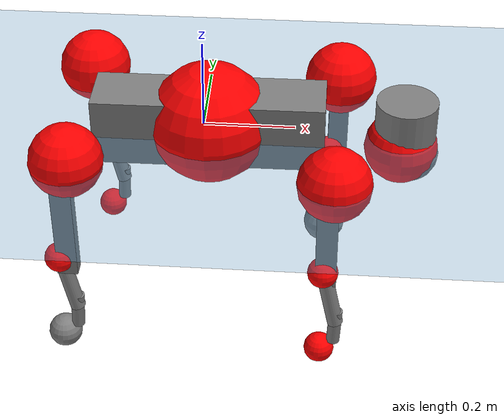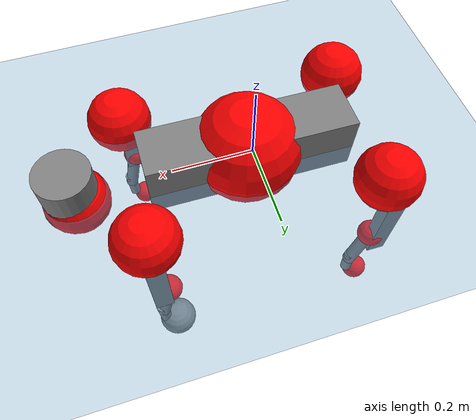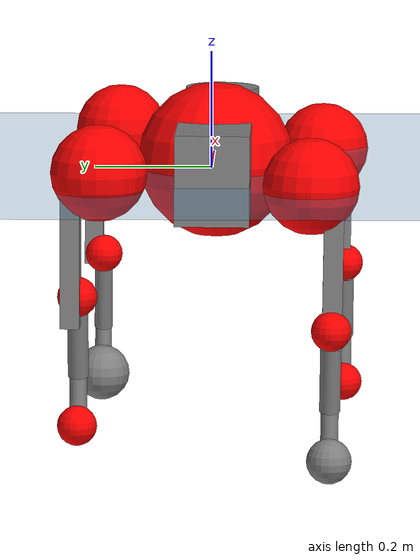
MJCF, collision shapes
<mujoco model="go2">
  <compiler angle="radian" assetdir="assets" balanceinertia="true" inertiafromgeom="false"/>

  <option timestep="0.005" density="1.2" viscosity="2e-05"/>

  <size nkey="1"/>

  <visual>
    <quality shadowsize="8192"/>
    <map shadowclip="0.5"/>
  </visual>

  <default>
    <default class="/">
      <geom contype="0" conaffinity="0" group="1" solref="-1000 -80"/>
      <site size="0.01 0.005 0.005" group="5"/>
      <general forcelimited="true" biastype="affine" gainprm="20" biasprm="0 -20 -0.5"/>
      <default class="go2">
        <joint armature="0.01" damping="0.01" frictionloss="0.2"/>
        <geom condim="1" margin="0.001"/>
        <default class="visual">
          <geom type="mesh" group="2"/>
        </default>
        <default class="collision">
          <geom group="3"/>
          <default class="foot">
            <geom size="0.022 0 0" condim="6" priority="1" friction="0.8 0.02 0.01" solimp="0.015 1 0.022"/>
          </default>
        </default>
        <default class="reward_collision_sphere">
          <geom group="5" rgba="1 0 0 1"/>
        </default>
      </default>
    </default>
  </default>

  <asset>
    <texture type="skybox" colorspace="auto" name="//unnamed_texture_0" builtin="gradient" rgb1="0.95 0.95 0.95" rgb2="0.95 0.95 0.95" width="100" height="600"/>
    <texture type="2d" colorspace="auto" name="texplane" builtin="checker" rgb1="0.345 0.575 0.748" rgb2="0.345 0.575 0.748" markrgb="1 1 1" width="512" height="512"/>
    <material name="MatPlane" class="/" texture="texplane" texuniform="true" texrepeat="2 2" specular="0.9"/>
    <material name="metal" class="/" rgba="0.9 0.95 0.95 1"/>
    <material name="black" class="/" rgba="0 0 0 1"/>
    <material name="white" class="/"/>
    <material name="gray" class="/" rgba="0.671705 0.692426 0.77427 1"/>
    <mesh name="base_0" class="/" file="base_0.obj"/>
    <mesh name="base_1" class="/" file="base_1.obj"/>
    <mesh name="base_2" class="/" file="base_2.obj"/>
    <mesh name="base_3" class="/" file="base_3.obj"/>
    <mesh name="base_4" class="/" file="base_4.obj"/>
    <mesh name="hip_0" class="/" file="hip_0.obj"/>
    <mesh name="hip_1" class="/" file="hip_1.obj"/>
    <mesh name="thigh_0" class="/" file="thigh_0.obj"/>
    <mesh name="thigh_1" class="/" file="thigh_1.obj"/>
    <mesh name="thigh_mirror_0" class="/" file="thigh_mirror_0.obj"/>
    <mesh name="thigh_mirror_1" class="/" file="thigh_mirror_1.obj"/>
    <mesh name="calf_0" class="/" file="calf_0.obj"/>
    <mesh name="calf_1" class="/" file="calf_1.obj"/>
    <mesh name="calf_mirror_0" class="/" file="calf_mirror_0.obj"/>
    <mesh name="calf_mirror_1" class="/" file="calf_mirror_1.obj"/>
    <mesh name="foot" class="/" file="foot.obj"/>
  </asset>

  <worldbody>
    <geom name="floor" class="/" size="100 100 0.125" type="plane" group="0" material="MatPlane"/>
    <light name="toplight_shadow" class="/" pos="0 0 5" dir="0.0990148 0.0990148 -0.990148" type="directional" ambient="0.04 0.04 0.04" diffuse="0.55 0.55 0.55" specular="0.12 0.12 0.12"/>
    <light name="toplight_fill" class="/" pos="0 0 5" dir="0.0990148 0.0990148 -0.990148" type="directional" castshadow="false" ambient="0.04 0.04 0.04" diffuse="0.3 0.3 0.3" specular="0.08 0.08 0.08"/>
    <body name="trunk" childclass="go2" pos="0.0143502 -0.0065081 0.0117462" quat="0.999978 0.00388119 -0.00388217 -0.0037758">
      <inertial pos="0.0433557 -0.012239 -0.00987922" quat="0.0531332 0.746851 0.0252895 0.662382" mass="13.9147" diaginertia="0.529307 0.716326 0.0184991"/>
      <joint name="//unnamed_joint_0" type="free" armature="0" damping="0" frictionloss="0"/>
      <geom name="//unnamed_geom_1" class="visual" material="black" mesh="base_0"/>
      <geom name="//unnamed_geom_2" class="visual" material="black" mesh="base_1"/>
      <geom name="//unnamed_geom_3" class="visual" material="black" mesh="base_2"/>
      <geom name="//unnamed_geom_4" class="visual" material="white" mesh="base_3"/>
      <geom name="//unnamed_geom_5" class="visual" material="gray" mesh="base_4"/>
      <geom name="trunk_1" class="collision" size="0.251128 0.0624148 0.0760994" type="box"/>
      <geom name="trunk_2" class="collision" size="0.0667538 0.0600785" pos="0.424081 0 0.0102452" type="cylinder"/>
      <geom name="trunk_3" class="collision" size="0.0627486" pos="0.435985 0 -0.0614713"/>
      <geom name="//unnamed_geom_9" class="reward_collision_sphere" size="0.133508"/>
      <geom name="//unnamed_geom_10" class="reward_collision_sphere" size="0.0801046" pos="0.416641 0 -0.0461034"/>
      <site name="imu" pos="-0.0998257 0.0980734 0.0926496" size="0.0133508"/>
      <camera name="track" pos="0 -2.98541 0" quat="0.707107 0.707107 0 0" mode="trackcom"/>
      <camera name="ego_camera" pos="0.464257 0 0.0461034" quat="-0.5 -0.5 0.5 0.5"/>
      <body name="FL_hip" pos="0.28374 0.0731729 0.00949868" quat="0.999954 0.00531459 0.00298626 0.00741266">
        <inertial pos="0.00388213 -0.00188514 0.00842274" quat="0.461865 0.537023 0.53729 0.457828" mass="1.2492" diaginertia="0.00501903 0.00332311 0.000358481"/>
        <joint name="FL_hip_joint" pos="0 0 0" axis="0.998109 0.0528291 -0.0314149" stiffness="0.0168774" range="-1.39732 1.08045" armature="0.00273695" damping="0" frictionloss="0.356083"/>
        <geom name="//unnamed_geom_11" class="visual" material="metal" mesh="hip_0"/>
        <geom name="//unnamed_geom_12" class="visual" material="gray" mesh="hip_1"/>
        <geom name="//unnamed_geom_13" class="collision" size="0.0614135 0.0267015" pos="0 0.119416 0" quat="0.707107 0.707107 0 0" type="cylinder"/>
        <geom name="//unnamed_geom_14" class="reward_collision_sphere" size="0.0801046" pos="0 0.104489 0"/>
        <body name="FL_thigh" pos="5.42882e-05 0.150184 0.00789254" quat="0.999999 0.000986857 0.000431227 -0.000366692">
          <inertial pos="-0.00106443 -0.0156473 -0.0138348" quat="0.853174 0.0736025 -0.0217206 0.515951" mass="2.80959" diaginertia="0.0372944 0.0470077 0.000848373"/>
          <joint name="FL_thigh_joint" pos="0 0 0" axis="-0.00381297 0.999367 0.0353728" range="-1.61704 3.11079" armature="0.0219102" damping="0.109183" frictionloss="0.261581"/>
          <geom name="//unnamed_geom_15" class="visual" material="metal" mesh="thigh_0"/>
          <geom name="//unnamed_geom_16" class="visual" material="gray" mesh="thigh_1"/>
          <geom name="//unnamed_geom_17" class="collision" size="0.142186 0.0163547 0.0226963" pos="0 0 -0.109111" quat="0.707107 0 0.707107 0" type="box"/>
          <body name="FL_calf" pos="-0.0197715 -0.0184374 -0.232261" quat="1 -0.00012963 -7.79783e-05 0.000110368">
            <inertial pos="0.0183155 0.0114251 -0.15877" quat="0.717246 0.00558793 -0.00182043 0.696795" mass="0.427705" diaginertia="0.00855251 0.0113772 5.57647e-05"/>
            <joint name="FL_calf_joint" pos="0 0 0" axis="-9.64399e-05 1 0.000316891" stiffness="0.0949858" range="-2.99796 -0.502794" armature="0.0135408" damping="0.0194826" frictionloss="0.349428"/>
            <geom name="//unnamed_geom_18" class="visual" material="gray" mesh="calf_0"/>
            <geom name="//unnamed_geom_19" class="visual" material="black" mesh="calf_1"/>
            <geom name="FL_calf0" class="collision" size="0.0160209 0.0801046" pos="0.011904 0 -0.0614713" quat="0.994493 0 -0.104807 0" type="cylinder"/>
            <geom name="//unnamed_geom_21" class="collision" size="0.0146858 0.04339" pos="0.0297601 0 -0.151629" quat="0.999688 0 0.0249974 0" type="cylinder"/>
            <geom name="//unnamed_geom_22" class="visual" pos="0 0 -0.218223" quat="1 0 0 0" material="black" mesh="foot"/>
            <geom name="FL_foot" class="foot" size="0.0494325" pos="-0.00297601 0 -0.218223"/>
            <geom name="//unnamed_geom_24" class="reward_collision_sphere" size="0.0333769"/>
            <geom name="//unnamed_geom_25" class="reward_collision_sphere" size="0.0333769" pos="-0.00297601 0 -0.218223"/>
            <site name="FL_foot" class="foot" pos="-0.00297601 0 -0.218223" size="0.0133508"/>
          </body>
        </body>
      </body>
      <body name="FR_hip" pos="0.276326 -0.0812822 -0.0180414" quat="0.999998 0.00173629 -0.000488898 -0.00076658">
        <inertial pos="0.000480385 0.0110091 -0.00405854" quat="0.552315 0.488372 0.434416 0.51742" mass="1.28125" diaginertia="0.00572746 0.00296137 0.000380874"/>
        <joint name="FR_hip_joint" pos="0 0 0" axis="0.999952 -0.00971977 -0.00129793" range="-1.34032 0.945863" armature="0.0130095" damping="0.0165064" frictionloss="0.139578"/>
        <geom name="//unnamed_geom_26" class="visual" pos="0 4.07863e-09 1.74941e-07" quat="4.63268e-05 1 0 0" material="metal" mesh="hip_0"/>
        <geom name="//unnamed_geom_27" class="visual" pos="0 6.61194e-09 -4.32696e-07" quat="4.63268e-05 1 0 0" material="gray" mesh="hip_1"/>
        <geom name="//unnamed_geom_28" class="collision" size="0.0614135 0.0267015" pos="0 -0.119416 0" quat="0.707107 0.707107 0 0" type="cylinder"/>
        <geom name="//unnamed_geom_29" class="reward_collision_sphere" size="0.0801046" pos="0 -0.104489 0"/>
        <body name="FR_thigh" pos="-0.0113115 -0.138515 0.015443" quat="0.999989 -0.0035503 -0.000278255 0.00289833">
          <inertial pos="-0.00343514 0.0324668 -0.0151609" quat="0.472563 -0.0563635 0.104922 0.873212" mass="1.88029" diaginertia="0.0386498 0.0336418 0.000770594"/>
          <joint name="FR_thigh_joint" pos="0 0 0" axis="-0.00862468 -0.999956 0.00365455" stiffness="0.014212" range="-3.13008 1.26148" armature="0.0229197" damping="0.0300956" frictionloss="0.162255"/>
          <geom name="//unnamed_geom_30" class="visual" material="metal" mesh="thigh_mirror_0"/>
          <geom name="//unnamed_geom_31" class="visual" material="gray" mesh="thigh_mirror_1"/>
          <geom name="//unnamed_geom_32" class="collision" size="0.142186 0.0163547 0.0226963" pos="0 0 -0.109111" quat="0.707107 0 0.707107 0" type="box"/>
          <body name="FR_calf" pos="-0.00601985 -0.00534381 -0.221553" quat="1 0.000220032 -0.00033673 0.000288163">
            <inertial pos="0.00205952 -0.00298798 -0.164848" quat="0.71021 0.0507803 0.0246695 0.701722" mass="0.853925" diaginertia="0.0117916 0.0102635 9.11889e-05"/>
            <joint name="FR_calf_joint" pos="0 0 0" axis="-0.0448701 -0.998982 -0.00469498" stiffness="0.0144991" range="0.765623 2.96359" armature="0.00380209" damping="0.0247911" frictionloss="0.275193"/>
            <geom name="//unnamed_geom_33" class="visual" material="gray" mesh="calf_mirror_0"/>
            <geom name="//unnamed_geom_34" class="visual" material="black" mesh="calf_mirror_1"/>
            <geom name="FR_calf0" class="collision" size="0.017356 0.0801046" pos="0.01488 0 -0.0614713" quat="0.995004 0 -0.0998334 0" type="cylinder"/>
            <geom name="//unnamed_geom_36" class="collision" size="0.0146858 0.04339" pos="0.0297601 0 -0.151629" quat="0.999688 0 0.0249974 0" type="cylinder"/>
            <geom name="//unnamed_geom_37" class="visual" pos="0 0 -0.218223" quat="1 0 0 0" material="black" mesh="foot"/>
            <geom name="FR_foot" class="foot" size="0.0188613" pos="-0.00297601 0 -0.218223"/>
            <geom name="//unnamed_geom_39" class="reward_collision_sphere" size="0.0333769"/>
            <geom name="//unnamed_geom_40" class="reward_collision_sphere" size="0.0333769" pos="-0.00297601 0 -0.218223"/>
            <site name="FR_foot" class="foot" pos="-0.00297601 0 -0.218223" size="0.0133508"/>
          </body>
        </body>
      </body>
      <body name="RL_hip" pos="-0.280566 0.0808218 0.0176383" quat="0.999999 -0.000120659 -0.00125074 -0.000103025">
        <inertial pos="0.00484261 0.00815329 0.0172909" quat="0.525779 0.480357 0.506645 0.485927" mass="1.35801" diaginertia="0.00550302 0.0055732 0.000544529"/>
        <joint name="RL_hip_joint" pos="0 0 0" axis="-0.999997 0.00127323 -0.00195187" range="-1.43193 0.701459" armature="0.013117" damping="0.0712057" frictionloss="0.0365387"/>
        <geom name="//unnamed_geom_41" class="visual" pos="-4.03768e-09 0 -7.91478e-07" quat="4.63268e-05 0 1 0" material="metal" mesh="hip_0"/>
        <geom name="//unnamed_geom_42" class="visual" pos="-6.54556e-09 0 -7.01928e-07" quat="4.63268e-05 0 1 0" material="gray" mesh="hip_1"/>
        <geom name="//unnamed_geom_43" class="collision" size="0.0614135 0.0267015" pos="0 0.119416 0" quat="0.707107 0.707107 0 0" type="cylinder"/>
        <geom name="//unnamed_geom_44" class="reward_collision_sphere" size="0.0801046" pos="0 0.104489 0"/>
        <body name="RL_thigh" pos="-0.004972 0.150824 -0.00633464" quat="1 -3.80128e-05 8.32601e-05 -0.000136472">
          <inertial pos="0.0113819 -0.0401933 -0.0139474" quat="0.793654 0.0330226 -0.0397279 0.606172" mass="2.59049" diaginertia="0.04613 0.035656 0.001048"/>
          <joint name="RL_thigh_joint" pos="0 0 0" axis="0.0276713 0.996433 -0.079723" stiffness="0.0469175" range="-0.179657 4.68529" armature="0.0064109" damping="0" frictionloss="0.314004"/>
          <geom name="//unnamed_geom_45" class="visual" material="metal" mesh="thigh_0"/>
          <geom name="//unnamed_geom_46" class="visual" material="gray" mesh="thigh_1"/>
          <geom name="//unnamed_geom_47" class="collision" size="0.142186 0.0163547 0.0226963" pos="0 0 -0.109111" quat="0.707107 0 0.707107 0" type="box"/>
          <body name="RL_calf" pos="0.0129601 -0.010774 -0.203382" quat="0.999997 0.000698825 -0.00165294 0.00144516">
            <inertial pos="-0.0031246 0.0120014 -0.158594" quat="0.730276 -0.0499347 -0.0539653 0.679184" mass="0.658481" diaginertia="0.0108119 0.00913005 6.50363e-05"/>
            <joint name="RL_calf_joint" pos="0 0 0" axis="0.0570802 0.998218 -0.0173733" stiffness="0.0984554" range="-2.91387 -0.853569" armature="0.00822402" damping="0" frictionloss="0.0973924"/>
            <geom name="//unnamed_geom_48" class="visual" material="gray" mesh="calf_0"/>
            <geom name="//unnamed_geom_49" class="visual" material="black" mesh="calf_1"/>
            <geom name="RL_calf0" class="collision" size="0.017356 0.0801046" pos="0.01488 0 -0.0614713" quat="0.995004 0 -0.0998334 0" type="cylinder"/>
            <geom name="//unnamed_geom_51" class="collision" size="0.0146858 0.04339" pos="0.0297601 0 -0.151629" quat="0.999688 0 0.0249974 0" type="cylinder"/>
            <geom name="//unnamed_geom_52" class="visual" pos="0 0 -0.218223" quat="1 0 0 0" material="black" mesh="foot"/>
            <geom name="RL_foot" class="foot" size="0.018214" pos="-0.00297601 0 -0.218223"/>
            <geom name="//unnamed_geom_54" class="reward_collision_sphere" size="0.0333769"/>
            <geom name="//unnamed_geom_55" class="reward_collision_sphere" size="0.0333769" pos="-0.00297601 0 -0.218223"/>
            <site name="RL_foot" class="foot" pos="-0.00297601 0 -0.218223" size="0.0133508"/>
          </body>
        </body>
      </body>
      <body name="RR_hip" pos="-0.287576 -0.060397 0.00139972" quat="0.999987 0.00317602 0.00379351 -0.000947566">
        <inertial pos="0.00423917 -0.0199569 0.014214" quat="0.501886 0.49489 0.499316 0.503863" mass="1.72383" diaginertia="0.00867358 0.00596739 0.000658098"/>
        <joint name="RR_hip_joint" pos="0 0 0" axis="-0.998917 -0.0325889 -0.0332115" stiffness="0.0191337" range="-1.24804 1.36115" armature="0.0209642" damping="0.0863211" frictionloss="0.13558"/>
        <geom name="//unnamed_geom_56" class="visual" pos="4.03784e-09 4.07863e-09 -9.66419e-07" quat="2.14617e-09 4.63268e-05 4.63268e-05 -1" material="metal" mesh="hip_0"/>
        <geom name="//unnamed_geom_57" class="visual" pos="6.54516e-09 6.61194e-09 -2.69233e-07" quat="2.14617e-09 4.63268e-05 4.63268e-05 -1" material="gray" mesh="hip_1"/>
        <geom name="//unnamed_geom_58" class="collision" size="0.0614135 0.0267015" pos="0 -0.119416 0" quat="0.707107 0.707107 0 0" type="cylinder"/>
        <geom name="//unnamed_geom_59" class="reward_collision_sphere" size="0.0801046" pos="0 -0.104489 0"/>
        <body name="RR_thigh" pos="-0.00735515 -0.142781 -0.017982" quat="0.999999 -0.000186838 -0.00102956 0.000111208">
          <inertial pos="0.00758679 0.0188789 -0.0324176" quat="0.554844 -0.0146375 0.0784346 0.82812" mass="3.93631" diaginertia="0.0447976 0.0555558 0.000955561"/>
          <joint name="RR_thigh_joint" pos="0 0 0" axis="0.0352806 -0.998762 -0.0350812" range="-4.17805 0.180422" armature="0.00994698" damping="0.0117674" frictionloss="0.480595"/>
          <geom name="//unnamed_geom_60" class="visual" material="metal" mesh="thigh_mirror_0"/>
          <geom name="//unnamed_geom_61" class="visual" material="gray" mesh="thigh_mirror_1"/>
          <geom name="//unnamed_geom_62" class="collision" size="0.142186 0.0163547 0.0226963" pos="0 0 -0.109111" quat="0.707107 0 0.707107 0" type="box"/>
          <body name="RR_calf" pos="-0.0182803 0.00119853 -0.219136" quat="0.999994 -0.00045894 0.00330774 -0.000857356">
            <inertial pos="-0.000305937 0.000599671 -0.142756" quat="0.681641 0.00404337 0.0128444 0.731563" mass="0.798474" diaginertia="0.0139657 0.0135737 6.59652e-05"/>
            <joint name="RR_calf_joint" pos="0 0 0" axis="0.0423133 -0.998121 0.0443241" stiffness="0.0616112" range="0.857027 2.46993" armature="0.0203087" damping="0.0937646" frictionloss="0.313953"/>
            <geom name="//unnamed_geom_63" class="visual" material="gray" mesh="calf_mirror_0"/>
            <geom name="//unnamed_geom_64" class="visual" material="black" mesh="calf_mirror_1"/>
            <geom name="RR_calf0" class="collision" size="0.017356 0.0801046" pos="0.01488 0 -0.0614713" quat="0.995004 0 -0.0998334 0" type="cylinder"/>
            <geom name="//unnamed_geom_66" class="collision" size="0.0146858 0.04339" pos="0.0297601 0 -0.151629" quat="0.999688 0 0.0249974 0" type="cylinder"/>
            <geom name="//unnamed_geom_67" class="visual" pos="0 0 -0.218223" quat="1 0 0 0" material="black" mesh="foot"/>
            <geom name="RR_foot" class="foot" size="0.037726" pos="-0.00297601 0 -0.218223"/>
            <geom name="//unnamed_geom_69" class="reward_collision_sphere" size="0.0333769"/>
            <geom name="//unnamed_geom_70" class="reward_collision_sphere" size="0.0333769" pos="-0.00297601 0 -0.218223"/>
            <site name="RR_foot" class="foot" pos="-0.00297601 0 -0.218223" size="0.0133508"/>
          </body>
        </body>
      </body>
    </body>
  </worldbody>

  <contact>
    <pair class="/" geom1="floor" geom2="FL_foot" name="//unnamed_contact_0"/>
    <pair class="/" geom1="floor" geom2="FR_foot" name="//unnamed_contact_1"/>
    <pair class="/" geom1="floor" geom2="RL_foot" name="//unnamed_contact_2"/>
    <pair class="/" geom1="floor" geom2="RR_foot" name="//unnamed_contact_3"/>
  </contact>

  <actuator>
    <general name="FL_hip" class="/" joint="FL_hip_joint" forcerange="-23.2807 23.2807" gainprm="33.037" biasprm="0 -33.037 -0.385444"/>
    <general name="FL_thigh" class="/" joint="FL_thigh_joint" forcerange="-12.3138 12.3138" gainprm="33.037" biasprm="0 -33.037 -0.385444"/>
    <general name="FL_calf" class="/" joint="FL_calf_joint" forcerange="-100.262 100.262" gainprm="33.037" biasprm="0 -33.037 -0.385444"/>
    <general name="FR_hip" class="/" joint="FR_hip_joint" forcerange="-25.2403 25.2403" gainprm="33.037" biasprm="0 -33.037 -0.385444"/>
    <general name="FR_thigh" class="/" joint="FR_thigh_joint" forcerange="-16.2559 16.2559" gainprm="33.037" biasprm="0 -33.037 -0.385444"/>
    <general name="FR_calf" class="/" joint="FR_calf_joint" forcerange="-15.1633 15.1633" gainprm="33.037" biasprm="0 -33.037 -0.385444"/>
    <general name="RL_hip" class="/" joint="RL_hip_joint" forcerange="-10.7783 10.7783" gainprm="33.037" biasprm="0 -33.037 -0.385444"/>
    <general name="RL_thigh" class="/" joint="RL_thigh_joint" forcerange="-18.0981 18.0981" gainprm="33.037" biasprm="0 -33.037 -0.385444"/>
    <general name="RL_calf" class="/" joint="RL_calf_joint" forcerange="-53.1608 53.1608" gainprm="33.037" biasprm="0 -33.037 -0.385444"/>
    <general name="RR_hip" class="/" joint="RR_hip_joint" forcerange="-36.462 36.462" gainprm="33.037" biasprm="0 -33.037 -0.385444"/>
    <general name="RR_thigh" class="/" joint="RR_thigh_joint" forcerange="-54.472 54.472" gainprm="33.037" biasprm="0 -33.037 -0.385444"/>
    <general name="RR_calf" class="/" joint="RR_calf_joint" forcerange="-96.1777 96.1777" gainprm="33.037" biasprm="0 -33.037 -0.385444"/>
  </actuator>

  <sensor>
    <gyro site="imu" name="imu_angular_velocity"/>
    <velocimeter site="imu" name="imu_linear_velocity"/>
    <framelinvel objtype="site" objname="FL_foot" name="FL_foot_global_linear_velocity"/>
    <framelinvel objtype="site" objname="FR_foot" name="FR_foot_global_linear_velocity"/>
    <framelinvel objtype="site" objname="RL_foot" name="RL_foot_global_linear_velocity"/>
    <framelinvel objtype="site" objname="RR_foot" name="RR_foot_global_linear_velocity"/>
  </sensor>

  <keyframe>
    <key name="home" qpos="0 0 0.325 1 0 0 0 0.1 0.8 -1.5 -0.1 -0.8 1.5 -0.1 0.8 -1.5 0.1 -0.8 1.5"/>
  </keyframe>
</mujoco>
